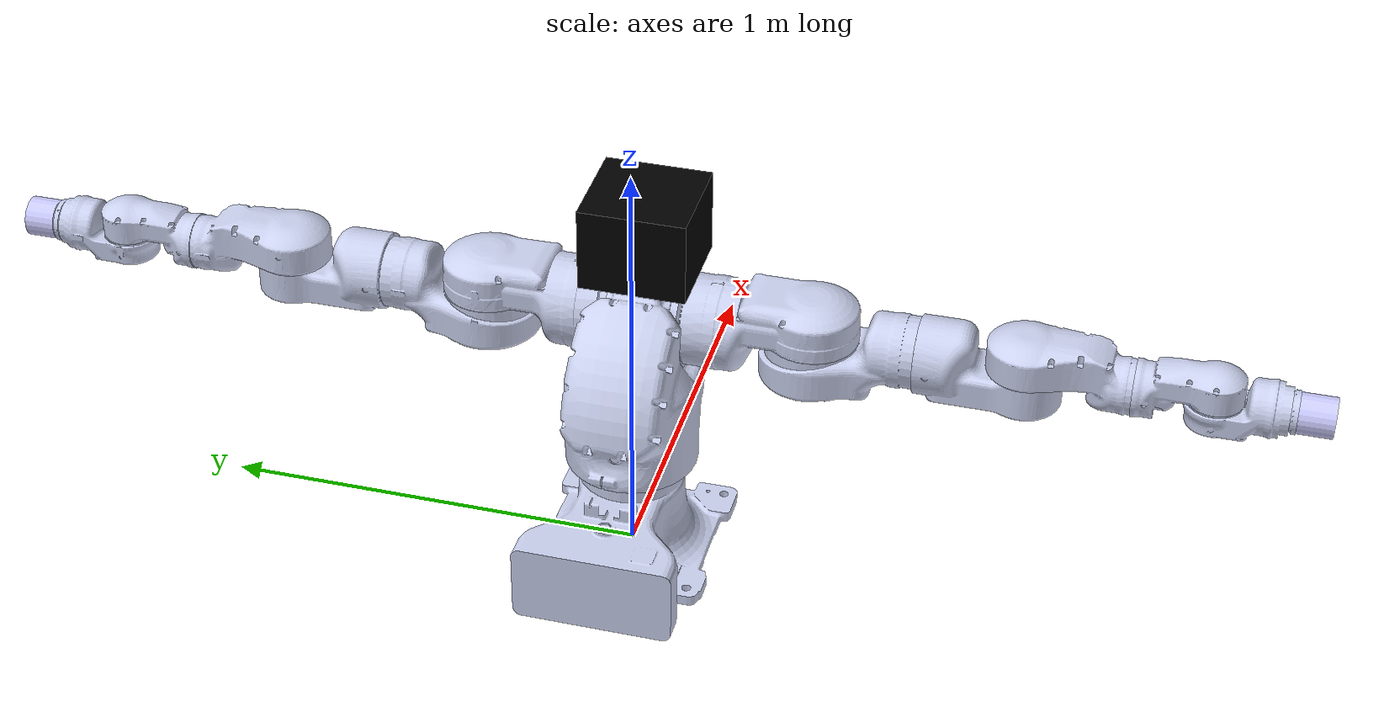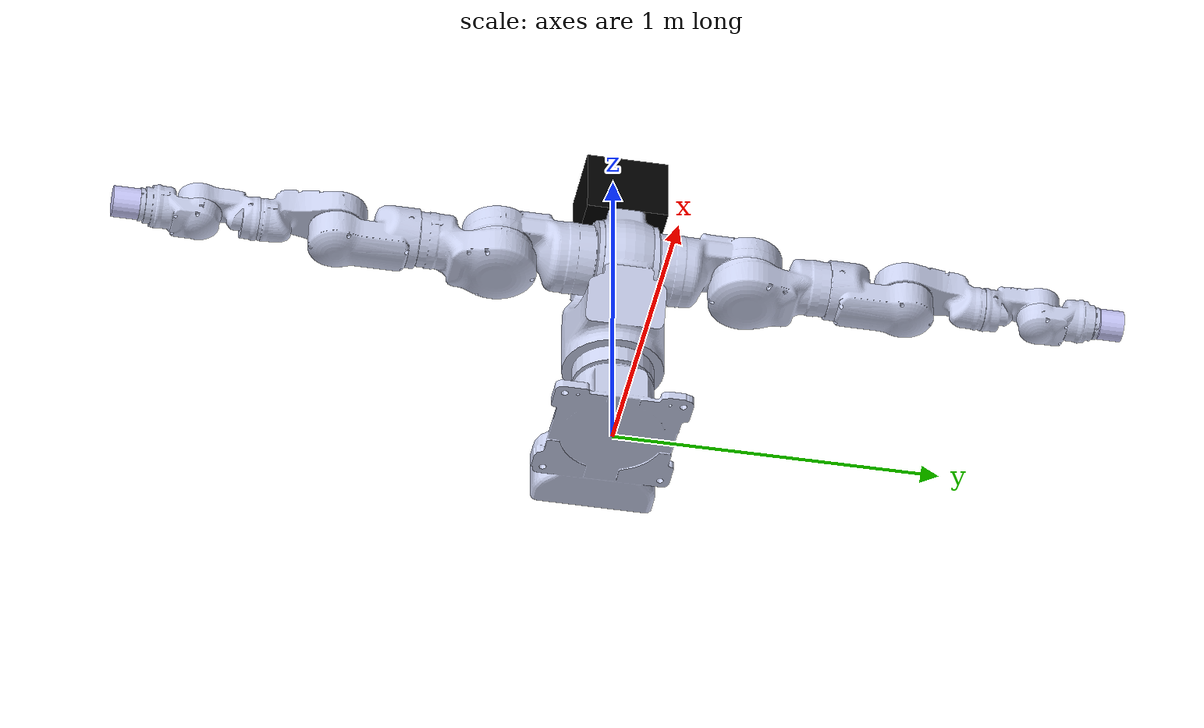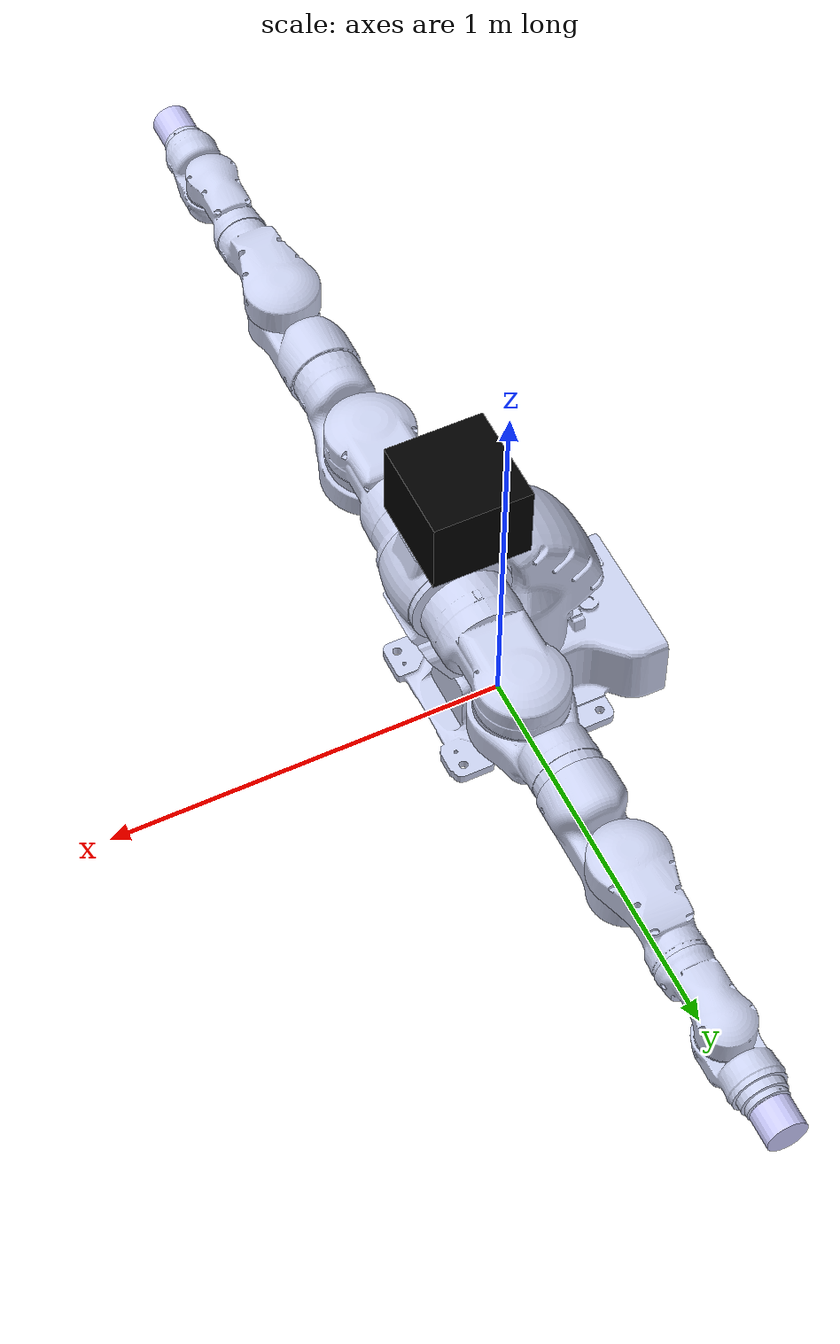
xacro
<?xml version="1.0"?>
<robot xmlns:xacro="http://ros.org/wiki/xacro" name="sda20d_gripper_hole_kinect">
	<xacro:include filename="$(find motoman_sda20d_support)/urdf/sda20d.xacro" />
        <xacro:include filename="$(find motoman_sda20d_with_peg_hole_kinect_support)/urdf/peg.xacro" />
        <joint name="peg_joint" type="fixed">
          <origin xyz="0 0 0.04" rpy="3.1416 0 0"/>
          <parent link="arm_left_link_tool0"/>
          <child link="peg_link"/>
        </joint>
        <link name="arm_left_link_tool1"/>
        <joint name="arm_left_joint_tool1" type="fixed">
          <origin xyz="0 0 0.04" rpy="3.1416 0 0"/>
          <parent link="peg_link"/>
          <child link="arm_left_link_tool1"/>
        </joint>
        <xacro:include filename="$(find motoman_sda20d_with_gripper_hole_kinect_support)/urdf/hole.xacro" />
        <joint name="hole_joint" type="fixed">
          <origin xyz="0 0 0.04" rpy="3.1416 0 0"/>
          <parent link="arm_right_link_tool0"/>
          <child link="hole_link"/>
        </joint>
        <xacro:include filename="$(find motoman_sda20d_with_gripper_hole_kinect_support)/urdf/kinect.xacro" />
        <joint name="kinect_joint" type="fixed">
          <origin xyz="0.12 0 0.54" rpy="0 0 0"/>
          <parent link="torso_link_b1"/>
          <child link="kinect_link"/>
        </joint>
</robot>
<!-- /home/cidesi-nl/cidesi_ws/src/motoman/motoman_sda20d_with_gripper_hole_kinect_support/urdf/model.urdf -->

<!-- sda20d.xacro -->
<robot name="motoman_sda20d" xmlns:xacro="http://ros.org/wiki/xacro">
	<xacro:include filename="$(find motoman_sda20d_support)/urdf/sda20d_macro.xacro" />
</robot>

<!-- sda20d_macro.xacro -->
<robot xmlns:xacro="http://ros.org/wiki/xacro">
     <xacro:include filename="$(find motoman_sda20d_support)/urdf/common_torso_macro.xacro" />
<xacro:include filename="$(find motoman_sda20d_support)/urdf/arm_macro.xacro" />

<xacro:torso prefix="torso_"/>
        <xacro:motoman_arm prefix="arm_left_" parent="torso_link_b1" reflect="1"/>
        <xacro:motoman_arm prefix="arm_right_" parent="torso_link_b1" reflect="-1"/>

<!-- The following xacro is kept for backwards compatibility, it should not be used -->
<!-- see: https://github.com/ros-industrial/motoman/issues/166 -->

</robot>

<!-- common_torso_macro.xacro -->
<robot xmlns:xacro="http://ros.org/wiki/xacro">
  <xacro:macro name="torso" params="prefix">

	<!-- link list -->
  <link
    name="base_link">
    <inertial>
      <origin
        xyz="-0.11144 -4.9089E-05 0.10433"
        rpy="0 0 0" />
      <mass
        value="28.727" />
      <inertia
        ixx="0.3449"
        ixy="-0.00060471"
        ixz="-0.0072714"
        iyy="0.73969"
        iyz="5.6352E-05"
        izz="0.82224" />
    </inertial>
    <visual>
      <origin
        xyz="0 0 0"
        rpy="0 0 0" />
      <geometry>
        <mesh
          filename="package://motoman_sda20d_support/meshes/visual/base_link.STL" />
      </geometry>
      <material
        name="">
        <color
          rgba="0.79216 0.81961 0.93333 1" />
      </material>
    </visual>
    <collision>
      <origin
        xyz="0 0 0"
        rpy="0 0 0" />
      <geometry>
        <mesh
          filename="package://motoman_sda20d_support/meshes/collision/base_link.STL" />
      </geometry>
    </collision>
  </link>

  <link
    name="${prefix}link_b1">
    <inertial>
      <origin
        xyz="0.026706 1.1222E-05 0.19713"
        rpy="0 0 0" />
      <mass
        value="36.439" />
      <inertia
        ixx="0.62924"
        ixy="7.5604E-05"
        ixz="-0.065715"
        iyy="0.97273"
        iyz="7.3187E-05"
        izz="0.67513" />
    </inertial>
    <visual>
      <origin
        xyz="0 0 0"
        rpy="0 0 0" />
      <geometry>
        <mesh
          filename="package://motoman_sda20d_support/meshes/visual/link_b1.STL" />
      </geometry>
      <material
        name="">
        <color
          rgba="0.79216 0.81961 0.93333 1" />
      </material>
    </visual>
    <collision>
      <origin
        xyz="0 0 0"
        rpy="0 0 0" />
      <geometry>
        <mesh
          filename="package://motoman_sda20d_support/meshes/collision/link_b1.STL" />
      </geometry>
    </collision>
  </link>

	<!-- joint list -->

  <joint
    name="${prefix}joint_b1"
    type="revolute">
    <origin
      xyz="0 0 0.2516"
      rpy="0 0 0" />
    <parent
      link="base_link" />
    <child
      link="${prefix}link_b1" />
    <axis
      xyz="0 0 1" />
    <limit
      effort="0"
      lower="-1.5555423498153687"
      upper="1.5555423498153687"
      velocity="2.181816" />
  </joint>

	<!-- end of joint list -->

</xacro:macro>
</robot>

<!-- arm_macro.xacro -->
<robot xmlns:xacro="http://ros.org/wiki/xacro">
<xacro:macro name="motoman_arm" params="prefix parent reflect">

	<!-- link list -->
  <link
    name="${prefix}link_1_s">
    <inertial>
      <origin
        xyz="5.2918E-06 0.021755 0.16826"
        rpy="0 0 0" />
      <mass
        value="10.704" />
      <inertia
        ixx="0.17312"
        ixy="-1.4296E-06"
        ixz="-8.891E-06"
        iyy="0.17545"
        iyz="-0.026584"
        izz="0.059382" />
    </inertial>
    <visual>
      <origin
        xyz="0 0 0"
        rpy="0 0 0" />
      <geometry>
        <mesh
          filename="package://motoman_sda20d_support/meshes/visual/link_1_s.STL" />
      </geometry>
      <material
        name="">
        <color
          rgba="0.79216 0.81961 0.93333 1" />
      </material>
    </visual>
    <collision>
      <origin
        xyz="0 0 0"
        rpy="0 0 0" />
      <geometry>
        <mesh
          filename="package://motoman_sda20d_support/meshes/collision/link_1_s.STL" />
      </geometry>
    </collision>
  </link>

  <link
    name="${prefix}link_2_l">
    <inertial>
      <origin
        xyz="0.069111 1.8074E-05 -0.039943"
        rpy="0 0 0" />
      <mass
        value="8.031" />
      <inertia
        ixx="0.03886"
        ixy="-1.2216E-05"
        ixz="-0.017517"
        iyy="0.094695"
        iyz="-5.0745E-06"
        izz="0.10194" />
    </inertial>
    <visual>
      <origin
        xyz="0 0 0"
        rpy="0 0 0" />
      <geometry>
        <mesh
          filename="package://motoman_sda20d_support/meshes/visual/link_2_l.STL" />
      </geometry>
      <material
        name="">
        <color
          rgba="0.79216 0.81961 0.93333 1" />
      </material>
    </visual>
    <collision>
      <origin
        xyz="0 0 0"
        rpy="0 0 0" />
      <geometry>
        <mesh
          filename="package://motoman_sda20d_support/meshes/collision/link_2_l.STL" />
      </geometry>
    </collision>
  </link>

  <link
    name="${prefix}link_3_e">
    <inertial>
      <origin
        xyz="2.3339E-06 -0.02415 0.13581"
        rpy="0 0 0" />
      <mass
        value="6.0023" />
      <inertia
        ixx="0.063894"
        ixy="-1.5274E-07"
        ixz="-3.0691E-08"
        iyy="0.062384"
        iyz="0.010637"
        izz="0.023266" />
    </inertial>
    <visual>
      <origin
        xyz="0 0 0"
        rpy="0 0 0" />
      <geometry>
        <mesh
          filename="package://motoman_sda20d_support/meshes/visual/link_3_e.STL" />
      </geometry>
      <material
        name="">
        <color
          rgba="0.79216 0.81961 0.93333 1" />
      </material>
    </visual>
    <collision>
      <origin
        xyz="0 0 0"
        rpy="0 0 0" />
      <geometry>
        <mesh
          filename="package://motoman_sda20d_support/meshes/collision/link_3_e.STL" />
      </geometry>
    </collision>
  </link>

  <link
    name="${prefix}link_4_u">
    <inertial>
      <origin
        xyz="0.076105 1.3438E-05 0.033833"
        rpy="0 0 0" />
      <mass
        value="4.2991" />
      <inertia
        ixx="0.01178"
        ixy="-1.1821E-05"
        ixz="0.0056112"
        iyy="0.042152"
        iyz="3.1996E-06"
        izz="0.043983" />
    </inertial>
    <visual>
      <origin
        xyz="0 0 0"
        rpy="0 0 0" />
      <geometry>
        <mesh
          filename="package://motoman_sda20d_support/meshes/visual/link_4_u.STL" />
      </geometry>
      <material
        name="">
        <color
          rgba="0.79216 0.81961 0.93333 1" />
      </material>
    </visual>
    <collision>
      <origin
        xyz="0 0 0"
        rpy="0 0 0" />
      <geometry>
        <mesh
          filename="package://motoman_sda20d_support/meshes/collision/link_4_u.STL" />
      </geometry>
    </collision>
  </link>

  <link
    name="${prefix}link_5_r">
    <inertial>
      <origin
        xyz="3.197E-06 0.024231 0.10713"
        rpy="0 0 0" />
      <mass
        value="2.1798" />
      <inertia
        ixx="0.012925"
        ixy="6.8017E-09"
        ixz="3.8025E-07"
        iyy="0.012754"
        iyz="-0.0021611"
        izz="0.0041053" />
    </inertial>
    <visual>
      <origin
        xyz="0 0 0"
        rpy="0 0 0" />
      <geometry>
        <mesh
          filename="package://motoman_sda20d_support/meshes/visual/link_5_r.STL" />
      </geometry>
      <material
        name="">
        <color
          rgba="0.79216 0.81961 0.93333 1" />
      </material>
    </visual>
    <collision>
      <origin
        xyz="0 0 0"
        rpy="0 0 0" />
      <geometry>
        <mesh
          filename="package://motoman_sda20d_support/meshes/collision/link_5_r.STL" />
      </geometry>
    </collision>
  </link>

  <link
    name="${prefix}link_6_b">
    <inertial>
      <origin
        xyz="0.063005 5.2352E-05 -0.0172"
        rpy="0 0 0" />
      <mass
        value="2.2078" />
      <inertia
        ixx="0.0045051"
        ixy="9.1066E-07"
        ixz="-0.0019934"
        iyy="0.010714"
        iyz="-6.1671E-07"
        izz="0.010934" />
    </inertial>
    <visual>
      <origin
        xyz="0 0 0"
        rpy="0 0 0" />
      <geometry>
        <mesh
          filename="package://motoman_sda20d_support/meshes/visual/link_6_b.STL" />
      </geometry>
      <material
        name="">
        <color
          rgba="0.79216 0.81961 0.93333 1" />
      </material>
    </visual>
    <collision>
      <origin
        xyz="0 0 0"
        rpy="0 0 0" />
      <geometry>
        <mesh
          filename="package://motoman_sda20d_support/meshes/collision/link_6_b.STL" />
      </geometry>
    </collision>
  </link>

      <link
        name="${prefix}link_7_t">
    <inertial>
      <origin
        xyz="-2.1465E-05 5.2992E-08 0.0078271"
        rpy="0 0 0" />
      <mass
        value="0.10719" />
      <inertia
        ixx="6.5327E-05"
        ixy="6.1499E-07"
        ixz="1.834E-08"
        iyy="6.5152E-05"
        iyz="-1.7925E-11"
        izz="0.0001262" />
    </inertial>
    <visual>
      <origin
        xyz="0 0 0"
        rpy="0 0 0" />
      <geometry>
        <mesh
          filename="package://motoman_sda20d_support/meshes/visual/link_7_t.STL" />
      </geometry>
      <material
        name="">
        <color
          rgba="0.79216 0.81961 0.93333 1" />
      </material>
    </visual>
    <collision>
      <origin
        xyz="0 0 0"
        rpy="0 0 0" />
      <geometry>
        <mesh
          filename="package://motoman_sda20d_support/meshes/collision/link_7_t.STL" />
      </geometry>
    </collision>
  </link>
  <link name="${prefix}link_tool0" />

	<!-- joint list -->
  <joint
    name="${prefix}joint_1_s"
    type="revolute">
    <origin
      xyz="0.15 ${reflect*0.075} 0.2984"
      rpy="${(reflect)*1.5708} ${(reflect)*1.5708-1.5708} 3.1416" />
    <parent
      link="${parent}" />
    <child
      link="${prefix}link_1_s" />
    <axis
      xyz="0 0 ${reflect}" />
    <limit
      effort="0"
      lower="-3.13"
      upper="3.13"
      velocity="0.151267548" />
    <!-- velocity="0.9076052904129028" -->
  </joint>

  <joint
    name="${prefix}joint_2_l"
    type="revolute">
    <origin
      xyz="0 0 0.31"
      rpy="-1.5708 -1.5708 0" />
    <parent
      link="${prefix}link_1_s" />
    <child
      link="${prefix}link_2_l" />
    <axis
      xyz="0 0 ${-reflect}" />
    <limit
      effort="0"
      lower="-1.90"
      upper="1.90"
      velocity="0.132802963" />
    <!-- velocity="0.7968177795410156" -->
  </joint>

  <joint
    name="${prefix}joint_3_e"
    type="revolute">
    <origin
      xyz="0.245 0 0"
      rpy="1.5708 -5.0715E-16 1.5708" />
    <parent
      link="${prefix}link_2_l" />
    <child
      link="${prefix}link_3_e" />
    <axis
      xyz="0 0 ${reflect}" />
    <limit
      effort="0"
      lower="-2.95"
      upper="2.95"
      velocity="0.173283021" />
    <!-- velocity="1.0396981239318848" -->
  </joint>

  <joint
    name="${prefix}joint_4_u"
    type="revolute">
    <origin
      xyz="0 0 0.245"
      rpy="-1.5708 -1.5708 0" />
    <parent
      link="${prefix}link_3_e" />
    <child
      link="${prefix}link_4_u" />
    <axis
      xyz="0 0 ${reflect}" />
    <limit
      effort="0"
      lower="-2.25"
      upper="2.25"
      velocity="0.198139191" />
    <!-- velocity="1.1888351440429688" -->
  </joint>

  <joint
    name="${prefix}joint_5_r"
    type="revolute">
    <origin
      xyz="0.241 0 0"
      rpy="1.5708 -1.464E-17 1.5708" />
    <parent
      link="${prefix}link_4_u" />
    <child
      link="${prefix}link_5_r" />
    <axis
      xyz="0 0 ${-reflect}" />
    <limit
      effort="0"
      lower="-3.13"
      upper="3.13"
      velocity="0.261991759" />
    <!-- velocity="1.5719505548477173" -->
  </joint>

  <joint
    name="${prefix}joint_6_b"
    type="revolute">
    <origin
      xyz="0 0 0.179"
      rpy="1.8852 -1.5708 2.8272" />
    <parent
      link="${prefix}link_5_r" />
    <child
      link="${prefix}link_6_b" />
    <axis
      xyz="0 0 ${reflect}" />
    <limit
      effort="0"
      lower="-1.90"
      upper="1.90"
      velocity="0.29046913" />
    <!-- velocity="1.7428147792816162" -->
  </joint>

  <joint
    name="${prefix}joint_7_t"
    type="revolute">
    <origin
      xyz="0.1642 0 0"
      rpy="1.5708 -1.0214E-15 1.5708" />
    <parent
      link="${prefix}link_6_b" />
    <child
      link="${prefix}link_7_t" />
    <axis
      xyz="0 0 ${-reflect}" />
    <limit
      effort="0"
      lower="-3.12"
      upper="3.12"
      velocity="0.340884606" />
    <!-- velocity="2.0453076362609863" -->
  </joint>

  <joint name="${prefix}joint_tool0" type="fixed" >
    <origin
      xyz="0 0 0.016" rpy="0 0 0"/>
    <parent
      link="${prefix}link_7_t" />
    <child link="${prefix}link_tool0" />
  </joint>
	<!-- end of joint list -->

</xacro:macro>
</robot>

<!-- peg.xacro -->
<robot name="peg" xmlns:xacro="http://ros.org/wiki/xacro">
  <material name="plate">
    <color rgba="0.8 0.8 1"/>
  </material>
  <link name="peg_link">
    <visual>
      <geometry>
        <cylinder length="0.072" radius="0.047"/>
      </geometry>
      <material name="plate"/>
    </visual>
  </link>
</robot>

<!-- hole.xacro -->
<robot name="hole" xmlns:xacro="http://ros.org/wiki/xacro">
  <material name="plate">
    <color rgba="0.8 0.8 1"/>
  </material>
  <link name="hole_link">
    <visual>
      <geometry>
        <cylinder length="0.082" radius="0.047"/>
      </geometry>
      <material name="plate"/>
    </visual>
  </link>
</robot>

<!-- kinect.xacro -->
<robot name="kinect" xmlns:xacro="http://ros.org/wiki/xacro">
  <material name="black">
    <color rgba="0 0 0"/>
  </material>
  <link name="kinect_link">
    <visual>
      <geometry>
        <box size="0.24 0.25 0.2"/>
      </geometry>
      <material name="black"/>
    </visual>
  </link>
</robot>
